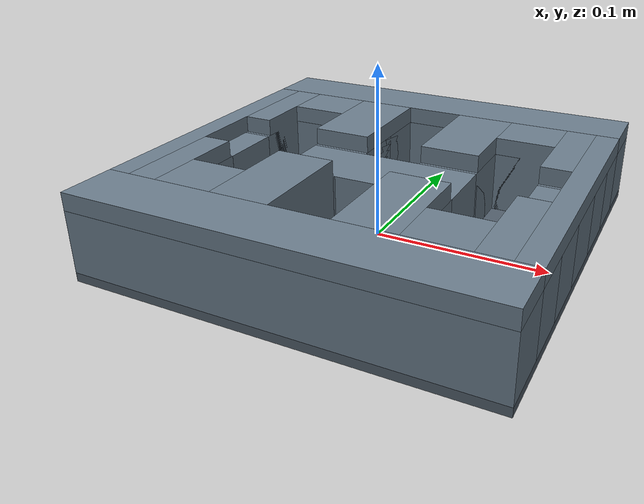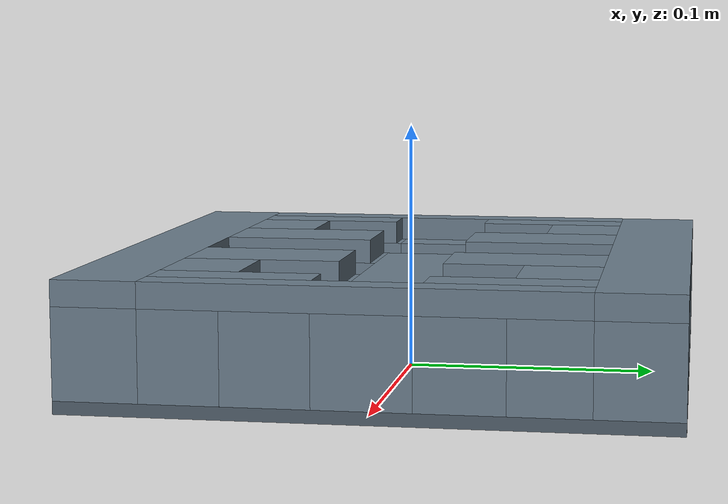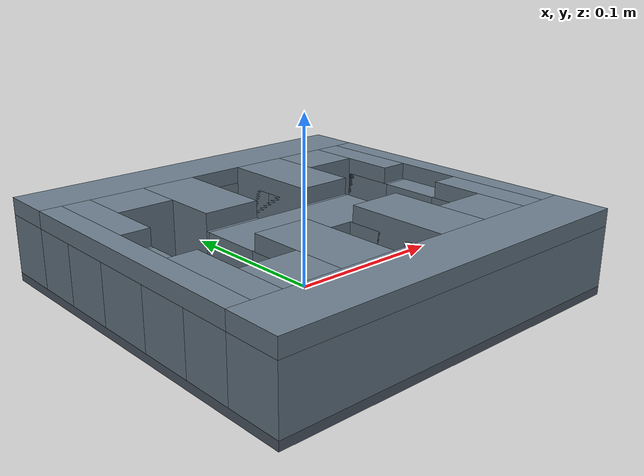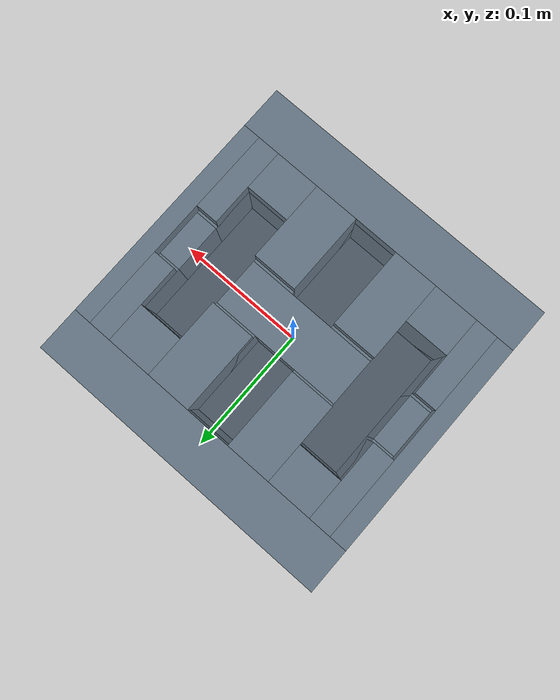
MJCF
<mujoco model="board_v1">
  <compiler angle="radian" meshdir="../assets/board_1" autolimits="true"/>

  <default>
    <default class="board_v1">
      <default class="vis">
        <geom contype="0" conaffinity="0" group="2" density="0" material="board_v1_mat"/>
      </default>
      <default class="col">
        <geom contype="1" conaffinity="1" group="3" priority="0"
              friction="0.3 0.02 0.001" solref="0.002 1" solimp="0.995 0.995 0.0001"
              condim="6" rgba="0.8 0.3 0.3 0.5"/>
      </default>
    </default>
  </default>

  <asset>
    <material name="board_v1_mat" rgba="0.42 0.49 0.55 1.0" specular="0.1" shininess="0.2"/>
    <material name="board_v1_floor_mat" rgba="0.32 0.37 0.42 1.0" specular="0.05" shininess="0.1"/>
  </asset>

  <worldbody>
    <body name="board_v1" pos="0 0 0" childclass="board_v1">
      <inertial pos="0 0 0" mass="1.0" diaginertia="1 1 1"/>
      <geom name="board_v1_vis0" type="box" pos="0.00000 0.00000 0.00250" size="0.11500 0.11500 0.00250" class="vis" material="board_v1_floor_mat"/>
      <geom name="board_v1_vis1" type="box" pos="0.00000 -0.09875 0.02250" size="0.11500 0.01625 0.01750" class="vis"/>
      <geom name="board_v1_vis2" type="box" pos="-0.06600 -0.06725 0.02250" size="0.04900 0.01525 0.01750" class="vis"/>
      <geom name="board_v1_vis3" type="box" pos="0.06600 -0.06725 0.02250" size="0.04900 0.01525 0.01750" class="vis"/>
      <geom name="board_v1_vis4" type="box" pos="-0.10000 -0.03525 0.02250" size="0.01500 0.01675 0.01750" class="vis"/>
      <geom name="board_v1_vis5" type="box" pos="-0.03400 -0.03525 0.02250" size="0.01700 0.01675 0.01750" class="vis"/>
      <geom name="board_v1_vis6" type="box" pos="0.03400 -0.03525 0.02250" size="0.01700 0.01675 0.01750" class="vis"/>
      <geom name="board_v1_vis7" type="box" pos="0.10000 -0.03525 0.02250" size="0.01500 0.01675 0.01750" class="vis"/>
      <geom name="board_v1_vis8" type="box" pos="-0.10000 0.00000 0.02250" size="0.01500 0.01850 0.01750" class="vis"/>
      <geom name="board_v1_vis9" type="box" pos="0.00000 0.00000 0.02250" size="0.05100 0.01850 0.01750" class="vis"/>
      <geom name="board_v1_vis10" type="box" pos="0.10000 0.00000 0.02250" size="0.01500 0.01850 0.01750" class="vis"/>
      <geom name="board_v1_vis11" type="box" pos="-0.10000 0.03525 0.02250" size="0.01500 0.01675 0.01750" class="vis"/>
      <geom name="board_v1_vis12" type="box" pos="-0.03400 0.03525 0.02250" size="0.01700 0.01675 0.01750" class="vis"/>
      <geom name="board_v1_vis13" type="box" pos="0.03400 0.03525 0.02250" size="0.01700 0.01675 0.01750" class="vis"/>
      <geom name="board_v1_vis14" type="box" pos="0.10000 0.03525 0.02250" size="0.01500 0.01675 0.01750" class="vis"/>
      <geom name="board_v1_vis15" type="box" pos="-0.06600 0.06725 0.02250" size="0.04900 0.01525 0.01750" class="vis"/>
      <geom name="board_v1_vis16" type="box" pos="0.06600 0.06725 0.02250" size="0.04900 0.01525 0.01750" class="vis"/>
      <geom name="board_v1_vis17" type="box" pos="0.00000 0.09875 0.02250" size="0.11500 0.01625 0.01750" class="vis"/>
      <geom name="board_v1_vis18" type="box" pos="0.00000 -0.09875 0.04500" size="0.11500 0.01625 0.00500" class="vis"/>
      <geom name="board_v1_vis19" type="box" pos="-0.10850 0.00000 0.04500" size="0.00650 0.08250 0.00500" class="vis"/>
      <geom name="board_v1_vis20" type="box" pos="0.10850 0.00000 0.04500" size="0.00650 0.08250 0.00500" class="vis"/>
      <geom name="board_v1_vis21" type="box" pos="0.00000 0.09875 0.04500" size="0.11500 0.01625 0.00500" class="vis"/>
      <geom name="board_v1_vis22" type="box" pos="0.03400 0.05150 0.02500" size="0.01700 0.03100 0.02500" class="vis"/>
      <geom name="board_v1_vis23" type="box" pos="0.09350 0.05150 0.02500" size="0.00850 0.03100 0.02500" class="vis"/>
      <geom name="board_v1_vis24" type="box" pos="0.06800 0.06725 0.02500" size="0.01700 0.01525 0.02500" class="vis"/>
      <geom name="board_v1_vis25" type="box" pos="-0.03400 -0.05150 0.02500" size="0.01700 0.03100 0.02500" class="vis"/>
      <geom name="board_v1_vis26" type="box" pos="-0.09350 -0.05150 0.02500" size="0.00850 0.03100 0.02500" class="vis"/>
      <geom name="board_v1_vis27" type="box" pos="-0.06800 -0.06725 0.02500" size="0.01700 0.01525 0.02500" class="vis"/>
      <geom name="board_v1_vis28" type="box" pos="0.03400 -0.05150 0.02500" size="0.01700 0.03100 0.02500" class="vis"/>
      <geom name="board_v1_vis29" type="box" pos="0.09350 -0.05150 0.02500" size="0.00850 0.03100 0.02500" class="vis"/>
      <geom name="board_v1_vis30" type="box" pos="0.06800 -0.06725 0.02500" size="0.01700 0.01525 0.02500" class="vis"/>
      <geom name="board_v1_vis31" type="box" pos="-0.03400 0.05150 0.02500" size="0.01700 0.03100 0.02500" class="vis"/>
      <geom name="board_v1_vis32" type="box" pos="-0.09350 0.05150 0.02500" size="0.00850 0.03100 0.02500" class="vis"/>
      <geom name="board_v1_vis33" type="box" pos="-0.06800 0.06725 0.02500" size="0.01700 0.01525 0.02500" class="vis"/>
      <geom name="board_v1_col0" type="box" pos="0.00000 0.00000 0.00250" size="0.11500 0.11500 0.00250" class="col"/>
      <geom name="board_v1_col1" type="box" pos="0.00000 -0.09875 0.02250" size="0.11500 0.01625 0.01750" class="col"/>
      <geom name="board_v1_col2" type="box" pos="-0.06600 -0.06725 0.02250" size="0.04900 0.01525 0.01750" class="col"/>
      <geom name="board_v1_col3" type="box" pos="0.06600 -0.06725 0.02250" size="0.04900 0.01525 0.01750" class="col"/>
      <geom name="board_v1_col4" type="box" pos="-0.10000 -0.03525 0.02250" size="0.01500 0.01675 0.01750" class="col"/>
      <geom name="board_v1_col5" type="box" pos="-0.03400 -0.03525 0.02250" size="0.01700 0.01675 0.01750" class="col"/>
      <geom name="board_v1_col6" type="box" pos="0.03400 -0.03525 0.02250" size="0.01700 0.01675 0.01750" class="col"/>
      <geom name="board_v1_col7" type="box" pos="0.10000 -0.03525 0.02250" size="0.01500 0.01675 0.01750" class="col"/>
      <geom name="board_v1_col8" type="box" pos="-0.10000 0.00000 0.02250" size="0.01500 0.01850 0.01750" class="col"/>
      <geom name="board_v1_col9" type="box" pos="0.00000 0.00000 0.02250" size="0.05100 0.01850 0.01750" class="col"/>
      <geom name="board_v1_col10" type="box" pos="0.10000 0.00000 0.02250" size="0.01500 0.01850 0.01750" class="col"/>
      <geom name="board_v1_col11" type="box" pos="-0.10000 0.03525 0.02250" size="0.01500 0.01675 0.01750" class="col"/>
      <geom name="board_v1_col12" type="box" pos="-0.03400 0.03525 0.02250" size="0.01700 0.01675 0.01750" class="col"/>
      <geom name="board_v1_col13" type="box" pos="0.03400 0.03525 0.02250" size="0.01700 0.01675 0.01750" class="col"/>
      <geom name="board_v1_col14" type="box" pos="0.10000 0.03525 0.02250" size="0.01500 0.01675 0.01750" class="col"/>
      <geom name="board_v1_col15" type="box" pos="-0.06600 0.06725 0.02250" size="0.04900 0.01525 0.01750" class="col"/>
      <geom name="board_v1_col16" type="box" pos="0.06600 0.06725 0.02250" size="0.04900 0.01525 0.01750" class="col"/>
      <geom name="board_v1_col17" type="box" pos="0.00000 0.09875 0.02250" size="0.11500 0.01625 0.01750" class="col"/>
      <geom name="board_v1_col18" type="box" pos="0.00000 -0.09875 0.04500" size="0.11500 0.01625 0.00500" class="col"/>
      <geom name="board_v1_col19" type="box" pos="-0.10850 0.00000 0.04500" size="0.00650 0.08250 0.00500" class="col"/>
      <geom name="board_v1_col20" type="box" pos="0.10850 0.00000 0.04500" size="0.00650 0.08250 0.00500" class="col"/>
      <geom name="board_v1_col21" type="box" pos="0.00000 0.09875 0.04500" size="0.11500 0.01625 0.00500" class="col"/>
      <geom name="board_v1_col22" type="box" pos="0.03400 0.05150 0.02500" size="0.01700 0.03100 0.02500" class="col"/>
      <geom name="board_v1_col23" type="box" pos="0.09350 0.05150 0.02500" size="0.00850 0.03100 0.02500" class="col"/>
      <geom name="board_v1_col24" type="box" pos="0.06800 0.06725 0.02500" size="0.01700 0.01525 0.02500" class="col"/>
      <geom name="board_v1_col25" type="box" pos="-0.03400 -0.05150 0.02500" size="0.01700 0.03100 0.02500" class="col"/>
      <geom name="board_v1_col26" type="box" pos="-0.09350 -0.05150 0.02500" size="0.00850 0.03100 0.02500" class="col"/>
      <geom name="board_v1_col27" type="box" pos="-0.06800 -0.06725 0.02500" size="0.01700 0.01525 0.02500" class="col"/>
      <geom name="board_v1_col28" type="box" pos="0.03400 -0.05150 0.02500" size="0.01700 0.03100 0.02500" class="col"/>
      <geom name="board_v1_col29" type="box" pos="0.09350 -0.05150 0.02500" size="0.00850 0.03100 0.02500" class="col"/>
      <geom name="board_v1_col30" type="box" pos="0.06800 -0.06725 0.02500" size="0.01700 0.01525 0.02500" class="col"/>
      <geom name="board_v1_col31" type="box" pos="-0.03400 0.05150 0.02500" size="0.01700 0.03100 0.02500" class="col"/>
      <geom name="board_v1_col32" type="box" pos="-0.09350 0.05150 0.02500" size="0.00850 0.03100 0.02500" class="col"/>
      <geom name="board_v1_col33" type="box" pos="-0.06800 0.06725 0.02500" size="0.01700 0.01525 0.02500" class="col"/>
    </body>
  </worldbody>
</mujoco>
